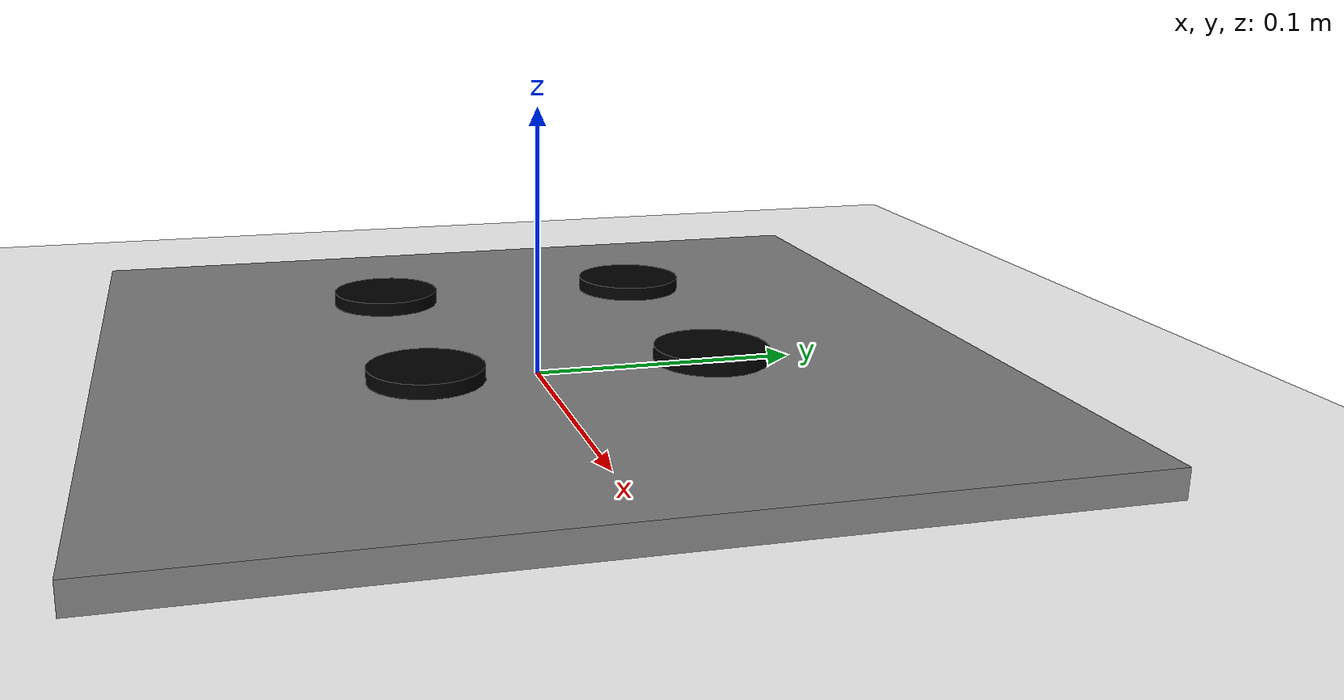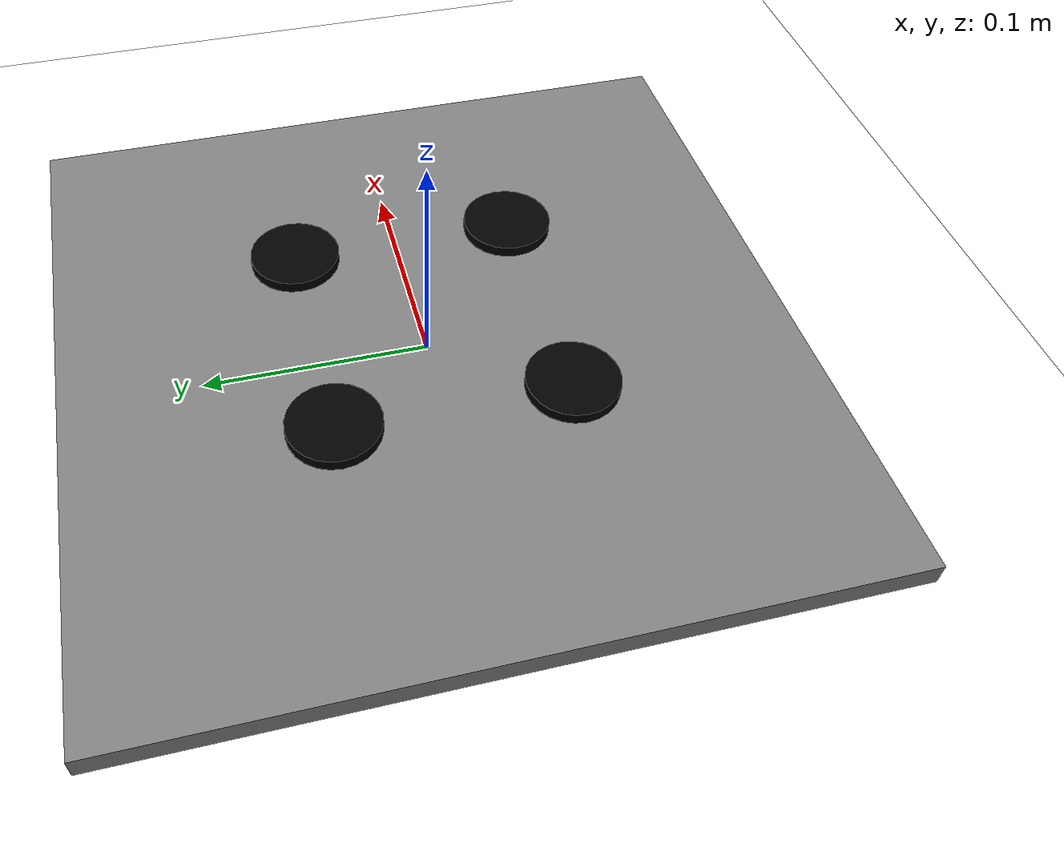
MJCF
<mujoco>
  <option timestep="0.003" density="1.204" viscosity="0.05" integrator="Euler"/>
  <option gravity="0 0 -9.81"/>
  <visual>
    <global elevation="-10"/>
  </visual>
  <default>
    <tendon limited="true" width="0.003" rgba="1 1 1 1"/>
    <geom friction=".2"/>
    <default class="weight">
      <geom rgba=".8 .4 .8 1"/>
      <site rgba=".8 .4 .8 1"/>
    </default>
    <default class="drone">
      <geom density="0.167" fluidshape="ellipsoid" friction="0.5 0.5 0.5"/>
      <default class="pink">
        <geom rgba="1 .6 .7 1"/>
        <site rgba="1 .6 .7 1"/>
      </default>
      <default class="blue">
        <geom rgba=".3 .7 .9 1"/>
        <site rgba=".3 .7 .9 1"/>
      </default>
      <default class="black">
        <geom rgba="0 0 0 1"/>
        <site rgba="0 0 0 1"/>
      </default>
      <default class="gray">
        <geom rgba=".5 .5 .5 1"/>
        <site rgba=".5 .5 .5 1"/>
      </default>
      <default class="green">
        <geom rgba=".4 .9 .5 1"/>
        <site rgba=".4 .9 .5 1"/>
      </default>
      <default class="orange">
        <geom rgba="1 .4 0 1"/>
        <site rgba="1 .4 0 1"/>
      </default>
    </default>
  </default>
  <asset>
    <!-- 白いテクスチャを設定 -->
    <texture name="grid" type="2d" builtin="checker" width="512" height="512" rgb1="1 1 1" rgb2="1 1 1"/>

    <!-- マテリアル（白色）を設定 -->
    <material name="white_ground" texture="grid" reflectance="0"/>
  </asset>
  <worldbody>
    <!-- 環境光（全体の明るさを調整） -->
    <light diffuse="1 1 1" specular="0.5 0.5 0.5" pos="0 0 5"/>
    <!-- 地面の設定（白色にする） -->
    <geom name="ground" type="plane" size="5 5 .01" pos="0 0 0" material="white_ground"/>

    <!-- 本体（ベース） -->
    <body name="drone_base" pos="0 0 0.0" childclass="gray">
      <freejoint/>
      <geom type="box" size="0.16 0.16 0.01" mass="0.70"  friction="0.8 0.1 0.1"/>

      <body name="prop1" pos="0.05 -0.05 0.02" childclass="black">
        <geom name="prop1_geom" type="cylinder" size="0.02 0.0025" mass="0.0025"/>
      </body>
      <body name="prop2" pos="-0.05 0.05 0.02" childclass="black">
        <geom name="prop2_geom" type="cylinder" size="0.02 0.0025" mass="0.0025"/>
      </body>
      <body name="prop3" pos="0.05 0.05 0.02" childclass="black">
        <geom name="prop3_geom" type="cylinder" size="0.02 0.0025" mass="0.0025"/>
      </body>
      <body name="prop4" pos="-0.05 -0.05 0.02" childclass="black">
        <geom name="prop4_geom" type="cylinder" size="0.02 0.0025" mass="0.0025"/>
      </body>

    </body>

  </worldbody>

</mujoco>
